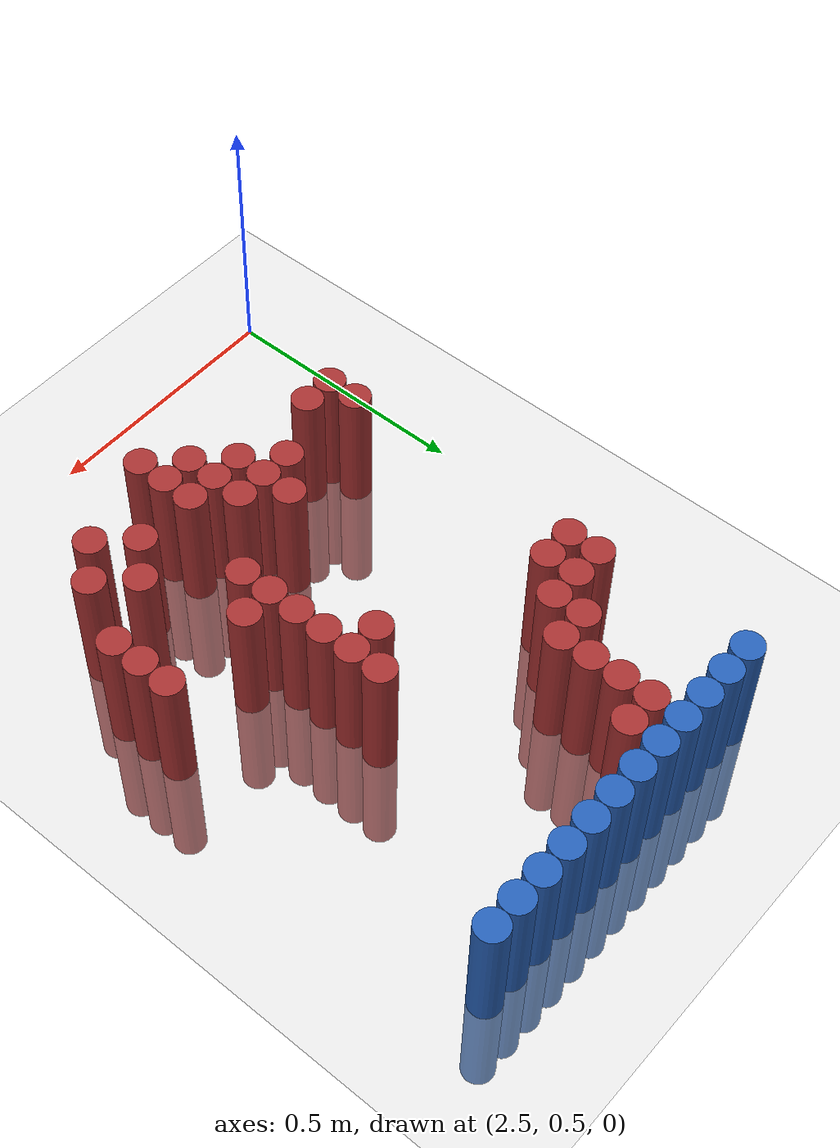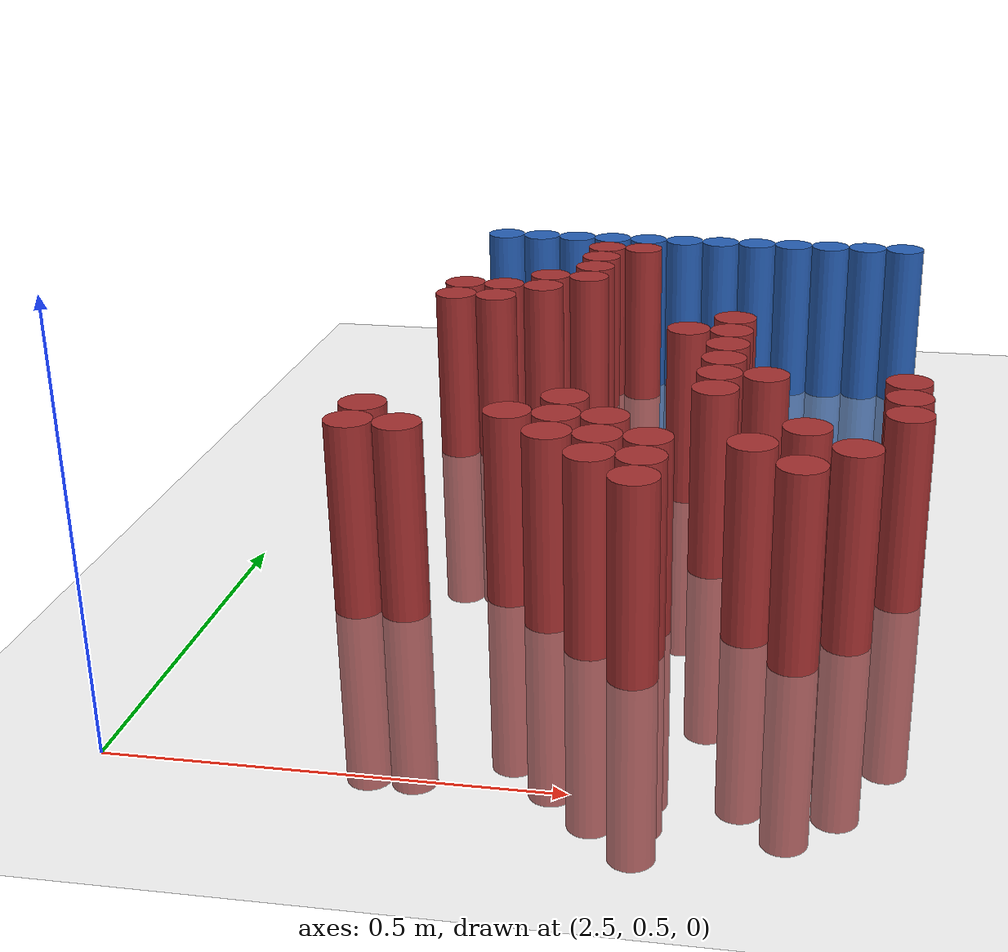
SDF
<sdf version="1.6">
 <world name="default">
  <model name="ground_plane">
   <static>1</static>
   <link name="link">
    <collision name="collision">
     <geometry><plane><normal>0 0 1</normal><size>100 100</size></plane></geometry>
     <surface><friction><ode><mu>100</mu><mu2>50</mu2></ode></friction></surface>
    </collision>
    <visual name="visual">
     <cast_shadows>0</cast_shadows>
     <geometry><plane><normal>0 0 1</normal><size>100 100</size></plane></geometry>
     <material>
      <script><uri>file://media/materials/scripts/gazebo.material</uri><name>Gazebo/Grey</name></script>
     </material>
    </visual>
   </link>
  </model>
  <model name="unit_cylinder_105">
   <static>1</static>
   <pose>2.670000 1.770000 0.000000 0.000000 0.000000 0.000000</pose>
   <link name="link">
    <inertial>
     <mass>1</mass>
     <inertia><ixx>0.145833</ixx><ixy>0</ixy><ixz>0</ixz><iyy>0.145833</iyy><iyz>0</iyz><izz>0.125</izz></inertia>
    </inertial>
    <collision name="collision">
     <geometry><cylinder><radius>0.030000</radius><length>0.5</length></cylinder></geometry>
    </collision>
    <visual name="visual">
     <geometry><cylinder><radius>0.030000</radius><length>0.5</length></cylinder></geometry>
     <material>
      <ambient>0.152000 0.379000 0.720000 1</ambient>
      <diffuse>0.152000 0.379000 0.720000 1</diffuse>
     </material>
     <material>
      <script><name>Gazebo/Grey</name><uri>file://media/materials/scripts/gazebo.material</uri></script>
     </material>
    </visual>
   </link>
  </model>
  <model name="unit_cylinder_106">
   <static>1</static>
   <pose>2.730000 1.770000 0.000000 0.000000 0.000000 0.000000</pose>
   <link name="link">
    <inertial>
     <mass>1</mass>
     <inertia><ixx>0.145833</ixx><ixy>0</ixy><ixz>0</ixz><iyy>0.145833</iyy><iyz>0</iyz><izz>0.125</izz></inertia>
    </inertial>
    <collision name="collision">
     <geometry><cylinder><radius>0.030000</radius><length>0.5</length></cylinder></geometry>
    </collision>
    <visual name="visual">
     <geometry><cylinder><radius>0.030000</radius><length>0.5</length></cylinder></geometry>
     <material>
      <ambient>0.152000 0.379000 0.720000 1</ambient>
      <diffuse>0.152000 0.379000 0.720000 1</diffuse>
     </material>
     <material>
      <script><name>Gazebo/Grey</name><uri>file://media/materials/scripts/gazebo.material</uri></script>
     </material>
    </visual>
   </link>
  </model>
  <model name="unit_cylinder_107">
   <static>1</static>
   <pose>2.790000 1.770000 0.000000 0.000000 0.000000 0.000000</pose>
   <link name="link">
    <inertial>
     <mass>1</mass>
     <inertia><ixx>0.145833</ixx><ixy>0</ixy><ixz>0</ixz><iyy>0.145833</iyy><iyz>0</iyz><izz>0.125</izz></inertia>
    </inertial>
    <collision name="collision">
     <geometry><cylinder><radius>0.030000</radius><length>0.5</length></cylinder></geometry>
    </collision>
    <visual name="visual">
     <geometry><cylinder><radius>0.030000</radius><length>0.5</length></cylinder></geometry>
     <material>
      <ambient>0.152000 0.379000 0.720000 1</ambient>
      <diffuse>0.152000 0.379000 0.720000 1</diffuse>
     </material>
     <material>
      <script><name>Gazebo/Grey</name><uri>file://media/materials/scripts/gazebo.material</uri></script>
     </material>
    </visual>
   </link>
  </model>
  <model name="unit_cylinder_108">
   <static>1</static>
   <pose>2.850000 1.770000 0.000000 0.000000 0.000000 0.000000</pose>
   <link name="link">
    <inertial>
     <mass>1</mass>
     <inertia><ixx>0.145833</ixx><ixy>0</ixy><ixz>0</ixz><iyy>0.145833</iyy><iyz>0</iyz><izz>0.125</izz></inertia>
    </inertial>
    <collision name="collision">
     <geometry><cylinder><radius>0.030000</radius><length>0.5</length></cylinder></geometry>
    </collision>
    <visual name="visual">
     <geometry><cylinder><radius>0.030000</radius><length>0.5</length></cylinder></geometry>
     <material>
      <ambient>0.152000 0.379000 0.720000 1</ambient>
      <diffuse>0.152000 0.379000 0.720000 1</diffuse>
     </material>
     <material>
      <script><name>Gazebo/Grey</name><uri>file://media/materials/scripts/gazebo.material</uri></script>
     </material>
    </visual>
   </link>
  </model>
  <model name="unit_cylinder_109">
   <static>1</static>
   <pose>2.910000 1.770000 0.000000 0.000000 0.000000 0.000000</pose>
   <link name="link">
    <inertial>
     <mass>1</mass>
     <inertia><ixx>0.145833</ixx><ixy>0</ixy><ixz>0</ixz><iyy>0.145833</iyy><iyz>0</iyz><izz>0.125</izz></inertia>
    </inertial>
    <collision name="collision">
     <geometry><cylinder><radius>0.030000</radius><length>0.5</length></cylinder></geometry>
    </collision>
    <visual name="visual">
     <geometry><cylinder><radius>0.030000</radius><length>0.5</length></cylinder></geometry>
     <material>
      <ambient>0.152000 0.379000 0.720000 1</ambient>
      <diffuse>0.152000 0.379000 0.720000 1</diffuse>
     </material>
     <material>
      <script><name>Gazebo/Grey</name><uri>file://media/materials/scripts/gazebo.material</uri></script>
     </material>
    </visual>
   </link>
  </model>
  <model name="unit_cylinder_110">
   <static>1</static>
   <pose>2.970000 1.770000 0.000000 0.000000 0.000000 0.000000</pose>
   <link name="link">
    <inertial>
     <mass>1</mass>
     <inertia><ixx>0.145833</ixx><ixy>0</ixy><ixz>0</ixz><iyy>0.145833</iyy><iyz>0</iyz><izz>0.125</izz></inertia>
    </inertial>
    <collision name="collision">
     <geometry><cylinder><radius>0.030000</radius><length>0.5</length></cylinder></geometry>
    </collision>
    <visual name="visual">
     <geometry><cylinder><radius>0.030000</radius><length>0.5</length></cylinder></geometry>
     <material>
      <ambient>0.152000 0.379000 0.720000 1</ambient>
      <diffuse>0.152000 0.379000 0.720000 1</diffuse>
     </material>
     <material>
      <script><name>Gazebo/Grey</name><uri>file://media/materials/scripts/gazebo.material</uri></script>
     </material>
    </visual>
   </link>
  </model>
  <model name="unit_cylinder_111">
   <static>1</static>
   <pose>3.030000 1.770000 0.000000 0.000000 0.000000 0.000000</pose>
   <link name="link">
    <inertial>
     <mass>1</mass>
     <inertia><ixx>0.145833</ixx><ixy>0</ixy><ixz>0</ixz><iyy>0.145833</iyy><iyz>0</iyz><izz>0.125</izz></inertia>
    </inertial>
    <collision name="collision">
     <geometry><cylinder><radius>0.030000</radius><length>0.5</length></cylinder></geometry>
    </collision>
    <visual name="visual">
     <geometry><cylinder><radius>0.030000</radius><length>0.5</length></cylinder></geometry>
     <material>
      <ambient>0.152000 0.379000 0.720000 1</ambient>
      <diffuse>0.152000 0.379000 0.720000 1</diffuse>
     </material>
     <material>
      <script><name>Gazebo/Grey</name><uri>file://media/materials/scripts/gazebo.material</uri></script>
     </material>
    </visual>
   </link>
  </model>
  <model name="unit_cylinder_112">
   <static>1</static>
   <pose>3.090000 1.770000 0.000000 0.000000 0.000000 0.000000</pose>
   <link name="link">
    <inertial>
     <mass>1</mass>
     <inertia><ixx>0.145833</ixx><ixy>0</ixy><ixz>0</ixz><iyy>0.145833</iyy><iyz>0</iyz><izz>0.125</izz></inertia>
    </inertial>
    <collision name="collision">
     <geometry><cylinder><radius>0.030000</radius><length>0.5</length></cylinder></geometry>
    </collision>
    <visual name="visual">
     <geometry><cylinder><radius>0.030000</radius><length>0.5</length></cylinder></geometry>
     <material>
      <ambient>0.152000 0.379000 0.720000 1</ambient>
      <diffuse>0.152000 0.379000 0.720000 1</diffuse>
     </material>
     <material>
      <script><name>Gazebo/Grey</name><uri>file://media/materials/scripts/gazebo.material</uri></script>
     </material>
    </visual>
   </link>
  </model>
  <model name="unit_cylinder_113">
   <static>1</static>
   <pose>3.150000 1.770000 0.000000 0.000000 0.000000 0.000000</pose>
   <link name="link">
    <inertial>
     <mass>1</mass>
     <inertia><ixx>0.145833</ixx><ixy>0</ixy><ixz>0</ixz><iyy>0.145833</iyy><iyz>0</iyz><izz>0.125</izz></inertia>
    </inertial>
    <collision name="collision">
     <geometry><cylinder><radius>0.030000</radius><length>0.5</length></cylinder></geometry>
    </collision>
    <visual name="visual">
     <geometry><cylinder><radius>0.030000</radius><length>0.5</length></cylinder></geometry>
     <material>
      <ambient>0.152000 0.379000 0.720000 1</ambient>
      <diffuse>0.152000 0.379000 0.720000 1</diffuse>
     </material>
     <material>
      <script><name>Gazebo/Grey</name><uri>file://media/materials/scripts/gazebo.material</uri></script>
     </material>
    </visual>
   </link>
  </model>
  <model name="unit_cylinder_114">
   <static>1</static>
   <pose>3.210000 1.770000 0.000000 0.000000 0.000000 0.000000</pose>
   <link name="link">
    <inertial>
     <mass>1</mass>
     <inertia><ixx>0.145833</ixx><ixy>0</ixy><ixz>0</ixz><iyy>0.145833</iyy><iyz>0</iyz><izz>0.125</izz></inertia>
    </inertial>
    <collision name="collision">
     <geometry><cylinder><radius>0.030000</radius><length>0.5</length></cylinder></geometry>
    </collision>
    <visual name="visual">
     <geometry><cylinder><radius>0.030000</radius><length>0.5</length></cylinder></geometry>
     <material>
      <ambient>0.152000 0.379000 0.720000 1</ambient>
      <diffuse>0.152000 0.379000 0.720000 1</diffuse>
     </material>
     <material>
      <script><name>Gazebo/Grey</name><uri>file://media/materials/scripts/gazebo.material</uri></script>
     </material>
    </visual>
   </link>
  </model>
  <model name="unit_cylinder_115">
   <static>1</static>
   <pose>3.270000 1.770000 0.000000 0.000000 0.000000 0.000000</pose>
   <link name="link">
    <inertial>
     <mass>1</mass>
     <inertia><ixx>0.145833</ixx><ixy>0</ixy><ixz>0</ixz><iyy>0.145833</iyy><iyz>0</iyz><izz>0.125</izz></inertia>
    </inertial>
    <collision name="collision">
     <geometry><cylinder><radius>0.030000</radius><length>0.5</length></cylinder></geometry>
    </collision>
    <visual name="visual">
     <geometry><cylinder><radius>0.030000</radius><length>0.5</length></cylinder></geometry>
     <material>
      <ambient>0.152000 0.379000 0.720000 1</ambient>
      <diffuse>0.152000 0.379000 0.720000 1</diffuse>
     </material>
     <material>
      <script><name>Gazebo/Grey</name><uri>file://media/materials/scripts/gazebo.material</uri></script>
     </material>
    </visual>
   </link>
  </model>
  <model name="unit_cylinder_116">
   <static>1</static>
   <pose>3.330000 1.770000 0.000000 0.000000 0.000000 0.000000</pose>
   <link name="link">
    <inertial>
     <mass>1</mass>
     <inertia><ixx>0.145833</ixx><ixy>0</ixy><ixz>0</ixz><iyy>0.145833</iyy><iyz>0</iyz><izz>0.125</izz></inertia>
    </inertial>
    <collision name="collision">
     <geometry><cylinder><radius>0.030000</radius><length>0.5</length></cylinder></geometry>
    </collision>
    <visual name="visual">
     <geometry><cylinder><radius>0.030000</radius><length>0.5</length></cylinder></geometry>
     <material>
      <ambient>0.152000 0.379000 0.720000 1</ambient>
      <diffuse>0.152000 0.379000 0.720000 1</diffuse>
     </material>
     <material>
      <script><name>Gazebo/Grey</name><uri>file://media/materials/scripts/gazebo.material</uri></script>
     </material>
    </visual>
   </link>
  </model>
  <model name="unit_cylinder_129">
   <static>1</static>
   <pose>2.850000 1.710000 0.000000 0.000000 0.000000 0.000000</pose>
   <link name="link">
    <inertial>
     <mass>1</mass>
     <inertia><ixx>0.145833</ixx><ixy>0</ixy><ixz>0</ixz><iyy>0.145833</iyy><iyz>0</iyz><izz>0.125</izz></inertia>
    </inertial>
    <collision name="collision">
     <geometry><cylinder><radius>0.030000</radius><length>0.5</length></cylinder></geometry>
    </collision>
    <visual name="visual">
     <geometry><cylinder><radius>0.030000</radius><length>0.5</length></cylinder></geometry>
     <material>
      <ambient>0.648000 0.192000 0.192000 1</ambient>
      <diffuse>0.648000 0.192000 0.192000 1</diffuse>
     </material>
     <material>
      <script><name>Gazebo/Grey</name><uri>file://media/materials/scripts/gazebo.material</uri></script>
     </material>
    </visual>
   </link>
  </model>
  <model name="unit_cylinder_130">
   <static>1</static>
   <pose>2.910000 1.710000 0.000000 0.000000 0.000000 0.000000</pose>
   <link name="link">
    <inertial>
     <mass>1</mass>
     <inertia><ixx>0.145833</ixx><ixy>0</ixy><ixz>0</ixz><iyy>0.145833</iyy><iyz>0</iyz><izz>0.125</izz></inertia>
    </inertial>
    <collision name="collision">
     <geometry><cylinder><radius>0.030000</radius><length>0.5</length></cylinder></geometry>
    </collision>
    <visual name="visual">
     <geometry><cylinder><radius>0.030000</radius><length>0.5</length></cylinder></geometry>
     <material>
      <ambient>0.648000 0.192000 0.192000 1</ambient>
      <diffuse>0.648000 0.192000 0.192000 1</diffuse>
     </material>
     <material>
      <script><name>Gazebo/Grey</name><uri>file://media/materials/scripts/gazebo.material</uri></script>
     </material>
    </visual>
   </link>
  </model>
  <model name="unit_cylinder_138">
   <static>1</static>
   <pose>2.850000 1.650000 0.000000 0.000000 0.000000 0.000000</pose>
   <link name="link">
    <inertial>
     <mass>1</mass>
     <inertia><ixx>0.145833</ixx><ixy>0</ixy><ixz>0</ixz><iyy>0.145833</iyy><iyz>0</iyz><izz>0.125</izz></inertia>
    </inertial>
    <collision name="collision">
     <geometry><cylinder><radius>0.030000</radius><length>0.5</length></cylinder></geometry>
    </collision>
    <visual name="visual">
     <geometry><cylinder><radius>0.030000</radius><length>0.5</length></cylinder></geometry>
     <material>
      <ambient>0.648000 0.192000 0.192000 1</ambient>
      <diffuse>0.648000 0.192000 0.192000 1</diffuse>
     </material>
     <material>
      <script><name>Gazebo/Grey</name><uri>file://media/materials/scripts/gazebo.material</uri></script>
     </material>
    </visual>
   </link>
  </model>
  <model name="unit_cylinder_143">
   <static>1</static>
   <pose>2.850000 1.590000 0.000000 0.000000 0.000000 0.000000</pose>
   <link name="link">
    <inertial>
     <mass>1</mass>
     <inertia><ixx>0.145833</ixx><ixy>0</ixy><ixz>0</ixz><iyy>0.145833</iyy><iyz>0</iyz><izz>0.125</izz></inertia>
    </inertial>
    <collision name="collision">
     <geometry><cylinder><radius>0.030000</radius><length>0.5</length></cylinder></geometry>
    </collision>
    <visual name="visual">
     <geometry><cylinder><radius>0.030000</radius><length>0.5</length></cylinder></geometry>
     <material>
      <ambient>0.648000 0.192000 0.192000 1</ambient>
      <diffuse>0.648000 0.192000 0.192000 1</diffuse>
     </material>
     <material>
      <script><name>Gazebo/Grey</name><uri>file://media/materials/scripts/gazebo.material</uri></script>
     </material>
    </visual>
   </link>
  </model>
  <model name="unit_cylinder_148">
   <static>1</static>
   <pose>2.790000 1.530000 0.000000 0.000000 0.000000 0.000000</pose>
   <link name="link">
    <inertial>
     <mass>1</mass>
     <inertia><ixx>0.145833</ixx><ixy>0</ixy><ixz>0</ixz><iyy>0.145833</iyy><iyz>0</iyz><izz>0.125</izz></inertia>
    </inertial>
    <collision name="collision">
     <geometry><cylinder><radius>0.030000</radius><length>0.5</length></cylinder></geometry>
    </collision>
    <visual name="visual">
     <geometry><cylinder><radius>0.030000</radius><length>0.5</length></cylinder></geometry>
     <material>
      <ambient>0.648000 0.192000 0.192000 1</ambient>
      <diffuse>0.648000 0.192000 0.192000 1</diffuse>
     </material>
     <material>
      <script><name>Gazebo/Grey</name><uri>file://media/materials/scripts/gazebo.material</uri></script>
     </material>
    </visual>
   </link>
  </model>
  <model name="unit_cylinder_149">
   <static>1</static>
   <pose>2.850000 1.530000 0.000000 0.000000 0.000000 0.000000</pose>
   <link name="link">
    <inertial>
     <mass>1</mass>
     <inertia><ixx>0.145833</ixx><ixy>0</ixy><ixz>0</ixz><iyy>0.145833</iyy><iyz>0</iyz><izz>0.125</izz></inertia>
    </inertial>
    <collision name="collision">
     <geometry><cylinder><radius>0.030000</radius><length>0.5</length></cylinder></geometry>
    </collision>
    <visual name="visual">
     <geometry><cylinder><radius>0.030000</radius><length>0.5</length></cylinder></geometry>
     <material>
      <ambient>0.648000 0.192000 0.192000 1</ambient>
      <diffuse>0.648000 0.192000 0.192000 1</diffuse>
     </material>
     <material>
      <script><name>Gazebo/Grey</name><uri>file://media/materials/scripts/gazebo.material</uri></script>
     </material>
    </visual>
   </link>
  </model>
  <model name="unit_cylinder_156">
   <static>1</static>
   <pose>2.670000 1.470000 0.000000 0.000000 0.000000 0.000000</pose>
   <link name="link">
    <inertial>
     <mass>1</mass>
     <inertia><ixx>0.145833</ixx><ixy>0</ixy><ixz>0</ixz><iyy>0.145833</iyy><iyz>0</iyz><izz>0.125</izz></inertia>
    </inertial>
    <collision name="collision">
     <geometry><cylinder><radius>0.030000</radius><length>0.5</length></cylinder></geometry>
    </collision>
    <visual name="visual">
     <geometry><cylinder><radius>0.030000</radius><length>0.5</length></cylinder></geometry>
     <material>
      <ambient>0.648000 0.192000 0.192000 1</ambient>
      <diffuse>0.648000 0.192000 0.192000 1</diffuse>
     </material>
     <material>
      <script><name>Gazebo/Grey</name><uri>file://media/materials/scripts/gazebo.material</uri></script>
     </material>
    </visual>
   </link>
  </model>
  <model name="unit_cylinder_157">
   <static>1</static>
   <pose>2.730000 1.470000 0.000000 0.000000 0.000000 0.000000</pose>
   <link name="link">
    <inertial>
     <mass>1</mass>
     <inertia><ixx>0.145833</ixx><ixy>0</ixy><ixz>0</ixz><iyy>0.145833</iyy><iyz>0</iyz><izz>0.125</izz></inertia>
    </inertial>
    <collision name="collision">
     <geometry><cylinder><radius>0.030000</radius><length>0.5</length></cylinder></geometry>
    </collision>
    <visual name="visual">
     <geometry><cylinder><radius>0.030000</radius><length>0.5</length></cylinder></geometry>
     <material>
      <ambient>0.648000 0.192000 0.192000 1</ambient>
      <diffuse>0.648000 0.192000 0.192000 1</diffuse>
     </material>
     <material>
      <script><name>Gazebo/Grey</name><uri>file://media/materials/scripts/gazebo.material</uri></script>
     </material>
    </visual>
   </link>
  </model>
  <model name="unit_cylinder_158">
   <static>1</static>
   <pose>2.790000 1.470000 0.000000 0.000000 0.000000 0.000000</pose>
   <link name="link">
    <inertial>
     <mass>1</mass>
     <inertia><ixx>0.145833</ixx><ixy>0</ixy><ixz>0</ixz><iyy>0.145833</iyy><iyz>0</iyz><izz>0.125</izz></inertia>
    </inertial>
    <collision name="collision">
     <geometry><cylinder><radius>0.030000</radius><length>0.5</length></cylinder></geometry>
    </collision>
    <visual name="visual">
     <geometry><cylinder><radius>0.030000</radius><length>0.5</length></cylinder></geometry>
     <material>
      <ambient>0.648000 0.192000 0.192000 1</ambient>
      <diffuse>0.648000 0.192000 0.192000 1</diffuse>
     </material>
     <material>
      <script><name>Gazebo/Grey</name><uri>file://media/materials/scripts/gazebo.material</uri></script>
     </material>
    </visual>
   </link>
  </model>
  <model name="unit_cylinder_163">
   <static>1</static>
   <pose>2.670000 1.410000 0.000000 0.000000 0.000000 0.000000</pose>
   <link name="link">
    <inertial>
     <mass>1</mass>
     <inertia><ixx>0.145833</ixx><ixy>0</ixy><ixz>0</ixz><iyy>0.145833</iyy><iyz>0</iyz><izz>0.125</izz></inertia>
    </inertial>
    <collision name="collision">
     <geometry><cylinder><radius>0.030000</radius><length>0.5</length></cylinder></geometry>
    </collision>
    <visual name="visual">
     <geometry><cylinder><radius>0.030000</radius><length>0.5</length></cylinder></geometry>
     <material>
      <ambient>0.648000 0.192000 0.192000 1</ambient>
      <diffuse>0.648000 0.192000 0.192000 1</diffuse>
     </material>
     <material>
      <script><name>Gazebo/Grey</name><uri>file://media/materials/scripts/gazebo.material</uri></script>
     </material>
    </visual>
   </link>
  </model>
  <model name="unit_cylinder_164">
   <static>1</static>
   <pose>2.730000 1.410000 0.000000 0.000000 0.000000 0.000000</pose>
   <link name="link">
    <inertial>
     <mass>1</mass>
     <inertia><ixx>0.145833</ixx><ixy>0</ixy><ixz>0</ixz><iyy>0.145833</iyy><iyz>0</iyz><izz>0.125</izz></inertia>
    </inertial>
    <collision name="collision">
     <geometry><cylinder><radius>0.030000</radius><length>0.5</length></cylinder></geometry>
    </collision>
    <visual name="visual">
     <geometry><cylinder><radius>0.030000</radius><length>0.5</length></cylinder></geometry>
     <material>
      <ambient>0.648000 0.192000 0.192000 1</ambient>
      <diffuse>0.648000 0.192000 0.192000 1</diffuse>
     </material>
     <material>
      <script><name>Gazebo/Grey</name><uri>file://media/materials/scripts/gazebo.material</uri></script>
     </material>
    </visual>
   </link>
  </model>
  <model name="unit_cylinder_170">
   <static>1</static>
   <pose>3.090000 1.350000 0.000000 0.000000 0.000000 0.000000</pose>
   <link name="link">
    <inertial>
     <mass>1</mass>
     <inertia><ixx>0.145833</ixx><ixy>0</ixy><ixz>0</ixz><iyy>0.145833</iyy><iyz>0</iyz><izz>0.125</izz></inertia>
    </inertial>
    <collision name="collision">
     <geometry><cylinder><radius>0.030000</radius><length>0.5</length></cylinder></geometry>
    </collision>
    <visual name="visual">
     <geometry><cylinder><radius>0.030000</radius><length>0.5</length></cylinder></geometry>
     <material>
      <ambient>0.648000 0.192000 0.192000 1</ambient>
      <diffuse>0.648000 0.192000 0.192000 1</diffuse>
     </material>
     <material>
      <script><name>Gazebo/Grey</name><uri>file://media/materials/scripts/gazebo.material</uri></script>
     </material>
    </visual>
   </link>
  </model>
  <model name="unit_cylinder_173">
   <static>1</static>
   <pose>3.030000 1.290000 0.000000 0.000000 0.000000 0.000000</pose>
   <link name="link">
    <inertial>
     <mass>1</mass>
     <inertia><ixx>0.145833</ixx><ixy>0</ixy><ixz>0</ixz><iyy>0.145833</iyy><iyz>0</iyz><izz>0.125</izz></inertia>
    </inertial>
    <collision name="collision">
     <geometry><cylinder><radius>0.030000</radius><length>0.5</length></cylinder></geometry>
    </collision>
    <visual name="visual">
     <geometry><cylinder><radius>0.030000</radius><length>0.5</length></cylinder></geometry>
     <material>
      <ambient>0.648000 0.192000 0.192000 1</ambient>
      <diffuse>0.648000 0.192000 0.192000 1</diffuse>
     </material>
     <material>
      <script><name>Gazebo/Grey</name><uri>file://media/materials/scripts/gazebo.material</uri></script>
     </material>
    </visual>
   </link>
  </model>
  <model name="unit_cylinder_174">
   <static>1</static>
   <pose>3.090000 1.290000 0.000000 0.000000 0.000000 0.000000</pose>
   <link name="link">
    <inertial>
     <mass>1</mass>
     <inertia><ixx>0.145833</ixx><ixy>0</ixy><ixz>0</ixz><iyy>0.145833</iyy><iyz>0</iyz><izz>0.125</izz></inertia>
    </inertial>
    <collision name="collision">
     <geometry><cylinder><radius>0.030000</radius><length>0.5</length></cylinder></geometry>
    </collision>
    <visual name="visual">
     <geometry><cylinder><radius>0.030000</radius><length>0.5</length></cylinder></geometry>
     <material>
      <ambient>0.648000 0.192000 0.192000 1</ambient>
      <diffuse>0.648000 0.192000 0.192000 1</diffuse>
     </material>
     <material>
      <script><name>Gazebo/Grey</name><uri>file://media/materials/scripts/gazebo.material</uri></script>
     </material>
    </visual>
   </link>
  </model>
  <model name="unit_cylinder_175">
   <static>1</static>
   <pose>3.090000 1.230000 0.000000 0.000000 0.000000 0.000000</pose>
   <link name="link">
    <inertial>
     <mass>1</mass>
     <inertia><ixx>0.145833</ixx><ixy>0</ixy><ixz>0</ixz><iyy>0.145833</iyy><iyz>0</iyz><izz>0.125</izz></inertia>
    </inertial>
    <collision name="collision">
     <geometry><cylinder><radius>0.030000</radius><length>0.5</length></cylinder></geometry>
    </collision>
    <visual name="visual">
     <geometry><cylinder><radius>0.030000</radius><length>0.5</length></cylinder></geometry>
     <material>
      <ambient>0.648000 0.192000 0.192000 1</ambient>
      <diffuse>0.648000 0.192000 0.192000 1</diffuse>
     </material>
     <material>
      <script><name>Gazebo/Grey</name><uri>file://media/materials/scripts/gazebo.material</uri></script>
     </material>
    </visual>
   </link>
  </model>
  <model name="unit_cylinder_178">
   <static>1</static>
   <pose>3.090000 1.170000 0.000000 0.000000 0.000000 0.000000</pose>
   <link name="link">
    <inertial>
     <mass>1</mass>
     <inertia><ixx>0.145833</ixx><ixy>0</ixy><ixz>0</ixz><iyy>0.145833</iyy><iyz>0</iyz><izz>0.125</izz></inertia>
    </inertial>
    <collision name="collision">
     <geometry><cylinder><radius>0.030000</radius><length>0.5</length></cylinder></geometry>
    </collision>
    <visual name="visual">
     <geometry><cylinder><radius>0.030000</radius><length>0.5</length></cylinder></geometry>
     <material>
      <ambient>0.648000 0.192000 0.192000 1</ambient>
      <diffuse>0.648000 0.192000 0.192000 1</diffuse>
     </material>
     <material>
      <script><name>Gazebo/Grey</name><uri>file://media/materials/scripts/gazebo.material</uri></script>
     </material>
    </visual>
   </link>
  </model>
  <model name="unit_cylinder_182">
   <static>1</static>
   <pose>3.090000 1.110000 0.000000 0.000000 0.000000 0.000000</pose>
   <link name="link">
    <inertial>
     <mass>1</mass>
     <inertia><ixx>0.145833</ixx><ixy>0</ixy><ixz>0</ixz><iyy>0.145833</iyy><iyz>0</iyz><izz>0.125</izz></inertia>
    </inertial>
    <collision name="collision">
     <geometry><cylinder><radius>0.030000</radius><length>0.5</length></cylinder></geometry>
    </collision>
    <visual name="visual">
     <geometry><cylinder><radius>0.030000</radius><length>0.5</length></cylinder></geometry>
     <material>
      <ambient>0.648000 0.192000 0.192000 1</ambient>
      <diffuse>0.648000 0.192000 0.192000 1</diffuse>
     </material>
     <material>
      <script><name>Gazebo/Grey</name><uri>file://media/materials/scripts/gazebo.material</uri></script>
     </material>
    </visual>
   </link>
  </model>
  <model name="unit_cylinder_183">
   <static>1</static>
   <pose>3.150000 1.110000 0.000000 0.000000 0.000000 0.000000</pose>
   <link name="link">
    <inertial>
     <mass>1</mass>
     <inertia><ixx>0.145833</ixx><ixy>0</ixy><ixz>0</ixz><iyy>0.145833</iyy><iyz>0</iyz><izz>0.125</izz></inertia>
    </inertial>
    <collision name="collision">
     <geometry><cylinder><radius>0.030000</radius><length>0.5</length></cylinder></geometry>
    </collision>
    <visual name="visual">
     <geometry><cylinder><radius>0.030000</radius><length>0.5</length></cylinder></geometry>
     <material>
      <ambient>0.648000 0.192000 0.192000 1</ambient>
      <diffuse>0.648000 0.192000 0.192000 1</diffuse>
     </material>
     <material>
      <script><name>Gazebo/Grey</name><uri>file://media/materials/scripts/gazebo.material</uri></script>
     </material>
    </visual>
   </link>
  </model>
  <model name="unit_cylinder_184">
   <static>1</static>
   <pose>3.330000 1.110000 0.000000 0.000000 0.000000 0.000000</pose>
   <link name="link">
    <inertial>
     <mass>1</mass>
     <inertia><ixx>0.145833</ixx><ixy>0</ixy><ixz>0</ixz><iyy>0.145833</iyy><iyz>0</iyz><izz>0.125</izz></inertia>
    </inertial>
    <collision name="collision">
     <geometry><cylinder><radius>0.030000</radius><length>0.5</length></cylinder></geometry>
    </collision>
    <visual name="visual">
     <geometry><cylinder><radius>0.030000</radius><length>0.5</length></cylinder></geometry>
     <material>
      <ambient>0.648000 0.192000 0.192000 1</ambient>
      <diffuse>0.648000 0.192000 0.192000 1</diffuse>
     </material>
     <material>
      <script><name>Gazebo/Grey</name><uri>file://media/materials/scripts/gazebo.material</uri></script>
     </material>
    </visual>
   </link>
  </model>
  <model name="unit_cylinder_187">
   <static>1</static>
   <pose>3.090000 1.050000 0.000000 0.000000 0.000000 0.000000</pose>
   <link name="link">
    <inertial>
     <mass>1</mass>
     <inertia><ixx>0.145833</ixx><ixy>0</ixy><ixz>0</ixz><iyy>0.145833</iyy><iyz>0</iyz><izz>0.125</izz></inertia>
    </inertial>
    <collision name="collision">
     <geometry><cylinder><radius>0.030000</radius><length>0.5</length></cylinder></geometry>
    </collision>
    <visual name="visual">
     <geometry><cylinder><radius>0.030000</radius><length>0.5</length></cylinder></geometry>
     <material>
      <ambient>0.648000 0.192000 0.192000 1</ambient>
      <diffuse>0.648000 0.192000 0.192000 1</diffuse>
     </material>
     <material>
      <script><name>Gazebo/Grey</name><uri>file://media/materials/scripts/gazebo.material</uri></script>
     </material>
    </visual>
   </link>
  </model>
  <model name="unit_cylinder_188">
   <static>1</static>
   <pose>3.330000 1.050000 0.000000 0.000000 0.000000 0.000000</pose>
   <link name="link">
    <inertial>
     <mass>1</mass>
     <inertia><ixx>0.145833</ixx><ixy>0</ixy><ixz>0</ixz><iyy>0.145833</iyy><iyz>0</iyz><izz>0.125</izz></inertia>
    </inertial>
    <collision name="collision">
     <geometry><cylinder><radius>0.030000</radius><length>0.5</length></cylinder></geometry>
    </collision>
    <visual name="visual">
     <geometry><cylinder><radius>0.030000</radius><length>0.5</length></cylinder></geometry>
     <material>
      <ambient>0.648000 0.192000 0.192000 1</ambient>
      <diffuse>0.648000 0.192000 0.192000 1</diffuse>
     </material>
     <material>
      <script><name>Gazebo/Grey</name><uri>file://media/materials/scripts/gazebo.material</uri></script>
     </material>
    </visual>
   </link>
  </model>
  <model name="unit_cylinder_190">
   <static>1</static>
   <pose>2.910000 0.990000 0.000000 0.000000 0.000000 0.000000</pose>
   <link name="link">
    <inertial>
     <mass>1</mass>
     <inertia><ixx>0.145833</ixx><ixy>0</ixy><ixz>0</ixz><iyy>0.145833</iyy><iyz>0</iyz><izz>0.125</izz></inertia>
    </inertial>
    <collision name="collision">
     <geometry><cylinder><radius>0.030000</radius><length>0.5</length></cylinder></geometry>
    </collision>
    <visual name="visual">
     <geometry><cylinder><radius>0.030000</radius><length>0.5</length></cylinder></geometry>
     <material>
      <ambient>0.648000 0.192000 0.192000 1</ambient>
      <diffuse>0.648000 0.192000 0.192000 1</diffuse>
     </material>
     <material>
      <script><name>Gazebo/Grey</name><uri>file://media/materials/scripts/gazebo.material</uri></script>
     </material>
    </visual>
   </link>
  </model>
  <model name="unit_cylinder_191">
   <static>1</static>
   <pose>3.330000 0.990000 0.000000 0.000000 0.000000 0.000000</pose>
   <link name="link">
    <inertial>
     <mass>1</mass>
     <inertia><ixx>0.145833</ixx><ixy>0</ixy><ixz>0</ixz><iyy>0.145833</iyy><iyz>0</iyz><izz>0.125</izz></inertia>
    </inertial>
    <collision name="collision">
     <geometry><cylinder><radius>0.030000</radius><length>0.5</length></cylinder></geometry>
    </collision>
    <visual name="visual">
     <geometry><cylinder><radius>0.030000</radius><length>0.5</length></cylinder></geometry>
     <material>
      <ambient>0.648000 0.192000 0.192000 1</ambient>
      <diffuse>0.648000 0.192000 0.192000 1</diffuse>
     </material>
     <material>
      <script><name>Gazebo/Grey</name><uri>file://media/materials/scripts/gazebo.material</uri></script>
     </material>
    </visual>
   </link>
  </model>
  <model name="unit_cylinder_195">
   <static>1</static>
   <pose>2.670000 0.930000 0.000000 0.000000 0.000000 0.000000</pose>
   <link name="link">
    <inertial>
     <mass>1</mass>
     <inertia><ixx>0.145833</ixx><ixy>0</ixy><ixz>0</ixz><iyy>0.145833</iyy><iyz>0</iyz><izz>0.125</izz></inertia>
    </inertial>
    <collision name="collision">
     <geometry><cylinder><radius>0.030000</radius><length>0.5</length></cylinder></geometry>
    </collision>
    <visual name="visual">
     <geometry><cylinder><radius>0.030000</radius><length>0.5</length></cylinder></geometry>
     <material>
      <ambient>0.648000 0.192000 0.192000 1</ambient>
      <diffuse>0.648000 0.192000 0.192000 1</diffuse>
     </material>
     <material>
      <script><name>Gazebo/Grey</name><uri>file://media/materials/scripts/gazebo.material</uri></script>
     </material>
    </visual>
   </link>
  </model>
  <model name="unit_cylinder_196">
   <static>1</static>
   <pose>2.850000 0.930000 0.000000 0.000000 0.000000 0.000000</pose>
   <link name="link">
    <inertial>
     <mass>1</mass>
     <inertia><ixx>0.145833</ixx><ixy>0</ixy><ixz>0</ixz><iyy>0.145833</iyy><iyz>0</iyz><izz>0.125</izz></inertia>
    </inertial>
    <collision name="collision">
     <geometry><cylinder><radius>0.030000</radius><length>0.5</length></cylinder></geometry>
    </collision>
    <visual name="visual">
     <geometry><cylinder><radius>0.030000</radius><length>0.5</length></cylinder></geometry>
     <material>
      <ambient>0.648000 0.192000 0.192000 1</ambient>
      <diffuse>0.648000 0.192000 0.192000 1</diffuse>
     </material>
     <material>
      <script><name>Gazebo/Grey</name><uri>file://media/materials/scripts/gazebo.material</uri></script>
     </material>
    </visual>
   </link>
  </model>
  <model name="unit_cylinder_197">
   <static>1</static>
   <pose>2.910000 0.930000 0.000000 0.000000 0.000000 0.000000</pose>
   <link name="link">
    <inertial>
     <mass>1</mass>
     <inertia><ixx>0.145833</ixx><ixy>0</ixy><ixz>0</ixz><iyy>0.145833</iyy><iyz>0</iyz><izz>0.125</izz></inertia>
    </inertial>
    <collision name="collision">
     <geometry><cylinder><radius>0.030000</radius><length>0.5</length></cylinder></geometry>
    </collision>
    <visual name="visual">
     <geometry><cylinder><radius>0.030000</radius><length>0.5</length></cylinder></geometry>
     <material>
      <ambient>0.648000 0.192000 0.192000 1</ambient>
      <diffuse>0.648000 0.192000 0.192000 1</diffuse>
     </material>
     <material>
      <script><name>Gazebo/Grey</name><uri>file://media/materials/scripts/gazebo.material</uri></script>
     </material>
    </visual>
   </link>
  </model>
  <model name="unit_cylinder_198">
   <static>1</static>
   <pose>2.970000 0.930000 0.000000 0.000000 0.000000 0.000000</pose>
   <link name="link">
    <inertial>
     <mass>1</mass>
     <inertia><ixx>0.145833</ixx><ixy>0</ixy><ixz>0</ixz><iyy>0.145833</iyy><iyz>0</iyz><izz>0.125</izz></inertia>
    </inertial>
    <collision name="collision">
     <geometry><cylinder><radius>0.030000</radius><length>0.5</length></cylinder></geometry>
    </collision>
    <visual name="visual">
     <geometry><cylinder><radius>0.030000</radius><length>0.5</length></cylinder></geometry>
     <material>
      <ambient>0.648000 0.192000 0.192000 1</ambient>
      <diffuse>0.648000 0.192000 0.192000 1</diffuse>
     </material>
     <material>
      <script><name>Gazebo/Grey</name><uri>file://media/materials/scripts/gazebo.material</uri></script>
     </material>
    </visual>
   </link>
  </model>
  <model name="unit_cylinder_199">
   <static>1</static>
   <pose>3.210000 0.930000 0.000000 0.000000 0.000000 0.000000</pose>
   <link name="link">
    <inertial>
     <mass>1</mass>
     <inertia><ixx>0.145833</ixx><ixy>0</ixy><ixz>0</ixz><iyy>0.145833</iyy><iyz>0</iyz><izz>0.125</izz></inertia>
    </inertial>
    <collision name="collision">
     <geometry><cylinder><radius>0.030000</radius><length>0.5</length></cylinder></geometry>
    </collision>
    <visual name="visual">
     <geometry><cylinder><radius>0.030000</radius><length>0.5</length></cylinder></geometry>
     <material>
      <ambient>0.648000 0.192000 0.192000 1</ambient>
      <diffuse>0.648000 0.192000 0.192000 1</diffuse>
     </material>
     <material>
      <script><name>Gazebo/Grey</name><uri>file://media/materials/scripts/gazebo.material</uri></script>
     </material>
    </visual>
   </link>
  </model>
  <model name="unit_cylinder_204">
   <static>1</static>
   <pose>2.670000 0.870000 0.000000 0.000000 0.000000 0.000000</pose>
   <link name="link">
    <inertial>
     <mass>1</mass>
     <inertia><ixx>0.145833</ixx><ixy>0</ixy><ixz>0</ixz><iyy>0.145833</iyy><iyz>0</iyz><izz>0.125</izz></inertia>
    </inertial>
    <collision name="collision">
     <geometry><cylinder><radius>0.030000</radius><length>0.5</length></cylinder></geometry>
    </collision>
    <visual name="visual">
     <geometry><cylinder><radius>0.030000</radius><length>0.5</length></cylinder></geometry>
     <material>
      <ambient>0.648000 0.192000 0.192000 1</ambient>
      <diffuse>0.648000 0.192000 0.192000 1</diffuse>
     </material>
     <material>
      <script><name>Gazebo/Grey</name><uri>file://media/materials/scripts/gazebo.material</uri></script>
     </material>
    </visual>
   </link>
  </model>
  <model name="unit_cylinder_205">
   <static>1</static>
   <pose>2.730000 0.870000 0.000000 0.000000 0.000000 0.000000</pose>
   <link name="link">
    <inertial>
     <mass>1</mass>
     <inertia><ixx>0.145833</ixx><ixy>0</ixy><ixz>0</ixz><iyy>0.145833</iyy><iyz>0</iyz><izz>0.125</izz></inertia>
    </inertial>
    <collision name="collision">
     <geometry><cylinder><radius>0.030000</radius><length>0.5</length></cylinder></geometry>
    </collision>
    <visual name="visual">
     <geometry><cylinder><radius>0.030000</radius><length>0.5</length></cylinder></geometry>
     <material>
      <ambient>0.648000 0.192000 0.192000 1</ambient>
      <diffuse>0.648000 0.192000 0.192000 1</diffuse>
     </material>
     <material>
      <script><name>Gazebo/Grey</name><uri>file://media/materials/scripts/gazebo.material</uri></script>
     </material>
    </visual>
   </link>
  </model>
  <model name="unit_cylinder_206">
   <static>1</static>
   <pose>2.910000 0.870000 0.000000 0.000000 0.000000 0.000000</pose>
   <link name="link">
    <inertial>
     <mass>1</mass>
     <inertia><ixx>0.145833</ixx><ixy>0</ixy><ixz>0</ixz><iyy>0.145833</iyy><iyz>0</iyz><izz>0.125</izz></inertia>
    </inertial>
    <collision name="collision">
     <geometry><cylinder><radius>0.030000</radius><length>0.5</length></cylinder></geometry>
    </collision>
    <visual name="visual">
     <geometry><cylinder><radius>0.030000</radius><length>0.5</length></cylinder></geometry>
     <material>
      <ambient>0.648000 0.192000 0.192000 1</ambient>
      <diffuse>0.648000 0.192000 0.192000 1</diffuse>
     </material>
     <material>
      <script><name>Gazebo/Grey</name><uri>file://media/materials/scripts/gazebo.material</uri></script>
     </material>
    </visual>
   </link>
  </model>
  <model name="unit_cylinder_207">
   <static>1</static>
   <pose>2.970000 0.870000 0.000000 0.000000 0.000000 0.000000</pose>
   <link name="link">
    <inertial>
     <mass>1</mass>
     <inertia><ixx>0.145833</ixx><ixy>0</ixy><ixz>0</ixz><iyy>0.145833</iyy><iyz>0</iyz><izz>0.125</izz></inertia>
    </inertial>
    <collision name="collision">
     <geometry><cylinder><radius>0.030000</radius><length>0.5</length></cylinder></geometry>
    </collision>
    <visual name="visual">
     <geometry><cylinder><radius>0.030000</radius><length>0.5</length></cylinder></geometry>
     <material>
      <ambient>0.648000 0.192000 0.192000 1</ambient>
      <diffuse>0.648000 0.192000 0.192000 1</diffuse>
     </material>
     <material>
      <script><name>Gazebo/Grey</name><uri>file://media/materials/scripts/gazebo.material</uri></script>
     </material>
    </visual>
   </link>
  </model>
  <model name="unit_cylinder_208">
   <static>1</static>
   <pose>3.030000 0.870000 0.000000 0.000000 0.000000 0.000000</pose>
   <link name="link">
    <inertial>
     <mass>1</mass>
     <inertia><ixx>0.145833</ixx><ixy>0</ixy><ixz>0</ixz><iyy>0.145833</iyy><iyz>0</iyz><izz>0.125</izz></inertia>
    </inertial>
    <collision name="collision">
     <geometry><cylinder><radius>0.030000</radius><length>0.5</length></cylinder></geometry>
    </collision>
    <visual name="visual">
     <geometry><cylinder><radius>0.030000</radius><length>0.5</length></cylinder></geometry>
     <material>
      <ambient>0.648000 0.192000 0.192000 1</ambient>
      <diffuse>0.648000 0.192000 0.192000 1</diffuse>
     </material>
     <material>
      <script><name>Gazebo/Grey</name><uri>file://media/materials/scripts/gazebo.material</uri></script>
     </material>
    </visual>
   </link>
  </model>
  <model name="unit_cylinder_209">
   <static>1</static>
   <pose>3.150000 0.870000 0.000000 0.000000 0.000000 0.000000</pose>
   <link name="link">
    <inertial>
     <mass>1</mass>
     <inertia><ixx>0.145833</ixx><ixy>0</ixy><ixz>0</ixz><iyy>0.145833</iyy><iyz>0</iyz><izz>0.125</izz></inertia>
    </inertial>
    <collision name="collision">
     <geometry><cylinder><radius>0.030000</radius><length>0.5</length></cylinder></geometry>
    </collision>
    <visual name="visual">
     <geometry><cylinder><radius>0.030000</radius><length>0.5</length></cylinder></geometry>
     <material>
      <ambient>0.648000 0.192000 0.192000 1</ambient>
      <diffuse>0.648000 0.192000 0.192000 1</diffuse>
     </material>
     <material>
      <script><name>Gazebo/Grey</name><uri>file://media/materials/scripts/gazebo.material</uri></script>
     </material>
    </visual>
   </link>
  </model>
  <model name="unit_cylinder_210">
   <static>1</static>
   <pose>3.270000 0.870000 0.000000 0.000000 0.000000 0.000000</pose>
   <link name="link">
    <inertial>
     <mass>1</mass>
     <inertia><ixx>0.145833</ixx><ixy>0</ixy><ixz>0</ixz><iyy>0.145833</iyy><iyz>0</iyz><izz>0.125</izz></inertia>
    </inertial>
    <collision name="collision">
     <geometry><cylinder><radius>0.030000</radius><length>0.5</length></cylinder></geometry>
    </collision>
    <visual name="visual">
     <geometry><cylinder><radius>0.030000</radius><length>0.5</length></cylinder></geometry>
     <material>
      <ambient>0.648000 0.192000 0.192000 1</ambient>
      <diffuse>0.648000 0.192000 0.192000 1</diffuse>
     </material>
     <material>
      <script><name>Gazebo/Grey</name><uri>file://media/materials/scripts/gazebo.material</uri></script>
     </material>
    </visual>
   </link>
  </model>
  <model name="unit_cylinder_216">
   <static>1</static>
   <pose>2.970000 0.810000 0.000000 0.000000 0.000000 0.000000</pose>
   <link name="link">
    <inertial>
     <mass>1</mass>
     <inertia><ixx>0.145833</ixx><ixy>0</ixy><ixz>0</ixz><iyy>0.145833</iyy><iyz>0</iyz><izz>0.125</izz></inertia>
    </inertial>
    <collision name="collision">
     <geometry><cylinder><radius>0.030000</radius><length>0.5</length></cylinder></geometry>
    </collision>
    <visual name="visual">
     <geometry><cylinder><radius>0.030000</radius><length>0.5</length></cylinder></geometry>
     <material>
      <ambient>0.648000 0.192000 0.192000 1</ambient>
      <diffuse>0.648000 0.192000 0.192000 1</diffuse>
     </material>
     <material>
      <script><name>Gazebo/Grey</name><uri>file://media/materials/scripts/gazebo.material</uri></script>
     </material>
    </visual>
   </link>
  </model>
  <model name="unit_cylinder_217">
   <static>1</static>
   <pose>3.030000 0.810000 0.000000 0.000000 0.000000 0.000000</pose>
   <link name="link">
    <inertial>
     <mass>1</mass>
     <inertia><ixx>0.145833</ixx><ixy>0</ixy><ixz>0</ixz><iyy>0.145833</iyy><iyz>0</iyz><izz>0.125</izz></inertia>
    </inertial>
    <collision name="collision">
     <geometry><cylinder><radius>0.030000</radius><length>0.5</length></cylinder></geometry>
    </collision>
    <visual name="visual">
     <geometry><cylinder><radius>0.030000</radius><length>0.5</length></cylinder></geometry>
     <material>
      <ambient>0.648000 0.192000 0.192000 1</ambient>
      <diffuse>0.648000 0.192000 0.192000 1</diffuse>
     </material>
     <material>
      <script><name>Gazebo/Grey</name><uri>file://media/materials/scripts/gazebo.material</uri></script>
     </material>
    </visual>
   </link>
  </model>
  <model name="unit_cylinder_218">
   <static>1</static>
   <pose>3.210000 0.810000 0.000000 0.000000 0.000000 0.000000</pose>
   <link name="link">
    <inertial>
     <mass>1</mass>
     <inertia><ixx>0.145833</ixx><ixy>0</ixy><ixz>0</ixz><iyy>0.145833</iyy><iyz>0</iyz><izz>0.125</izz></inertia>
    </inertial>
    <collision name="collision">
     <geometry><cylinder><radius>0.030000</radius><length>0.5</length></cylinder></geometry>
    </collision>
    <visual name="visual">
     <geometry><cylinder><radius>0.030000</radius><length>0.5</length></cylinder></geometry>
     <material>
      <ambient>0.648000 0.192000 0.192000 1</ambient>
      <diffuse>0.648000 0.192000 0.192000 1</diffuse>
     </material>
     <material>
      <script><name>Gazebo/Grey</name><uri>file://media/materials/scripts/gazebo.material</uri></script>
     </material>
    </visual>
   </link>
  </model>
  <model name="unit_cylinder_222">
   <static>1</static>
   <pose>3.030000 0.750000 0.000000 0.000000 0.000000 0.000000</pose>
   <link name="link">
    <inertial>
     <mass>1</mass>
     <inertia><ixx>0.145833</ixx><ixy>0</ixy><ixz>0</ixz><iyy>0.145833</iyy><iyz>0</iyz><izz>0.125</izz></inertia>
    </inertial>
    <collision name="collision">
     <geometry><cylinder><radius>0.030000</radius><length>0.5</length></cylinder></geometry>
    </collision>
    <visual name="visual">
     <geometry><cylinder><radius>0.030000</radius><length>0.5</length></cylinder></geometry>
     <material>
      <ambient>0.648000 0.192000 0.192000 1</ambient>
      <diffuse>0.648000 0.192000 0.192000 1</diffuse>
     </material>
     <material>
      <script><name>Gazebo/Grey</name><uri>file://media/materials/scripts/gazebo.material</uri></script>
     </material>
    </visual>
   </link>
  </model>
 </world>
</sdf>
